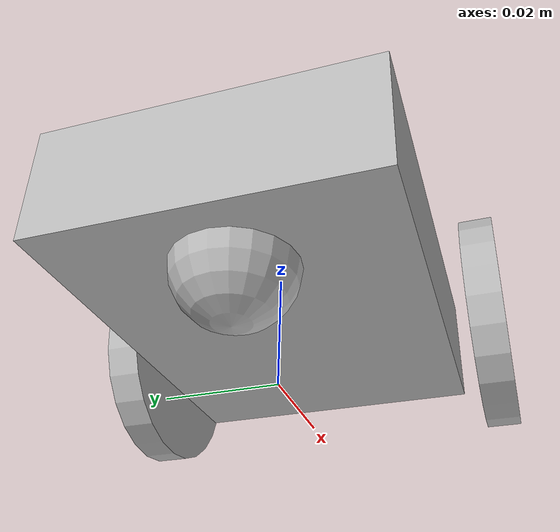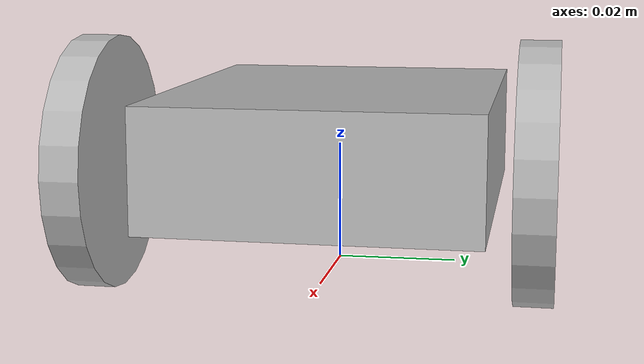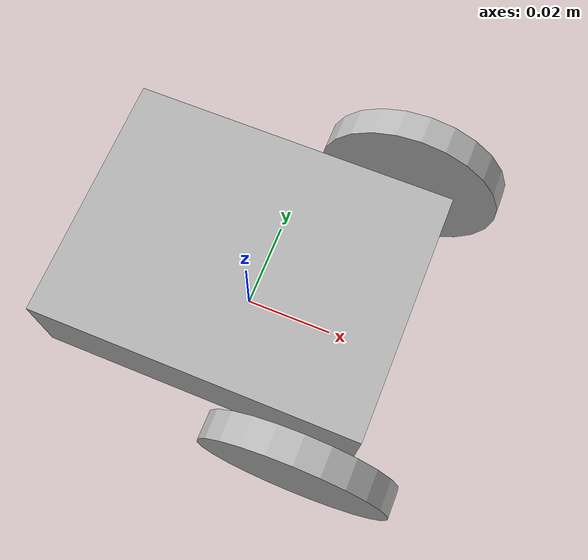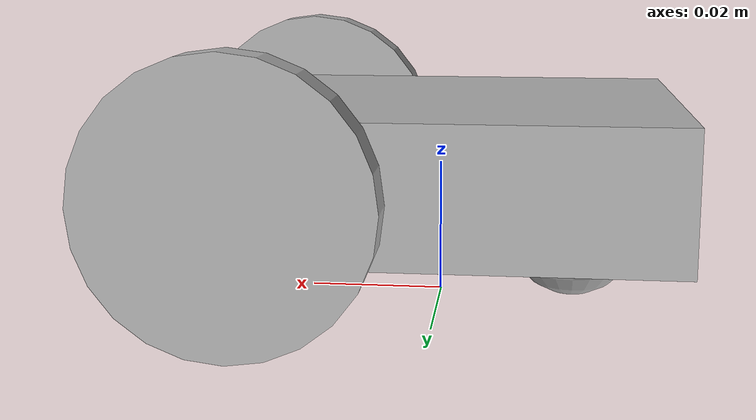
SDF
<?xml version="1.0"?>
<sdf version="1.4">
  <model name="remy">
    <static>false</static>
    <plugin name="microbrain" filename="libmicromouse_plugin.so"/>
    <link name="chassis">
      <pose>0 0 .02 0 0 0</pose>
  <inertial>
    <mass>2</mass>
    <inertia>
      <ixx>0</ixx>
      <ixy>1</ixy>
      <ixz>1</ixz>
      <iyy>0</iyy>
      <iyz>0</iyz>
      <izz>0</izz>
    </inertia>
  </inertial>
      <collision name="collision">
        <geometry>
          <box>
            <size>0.07 0.054 .02</size>
          </box>
        </geometry>
      </collision>
      <visual name="visual">
        <geometry>
          <box>
            <size>0.07 0.054 .02</size>
          </box>
        </geometry>
      </visual>
      <collision name="caster_collision">
        <pose>-0.02 0 -0.01 0 0 0</pose>
        <geometry>
          <sphere>
            <radius>.01</radius>
          </sphere>
        </geometry>
        <surface>
          <friction>
            <ode>
              <mu>0</mu>
              <mu2>0</mu2>
              <slip1>1.0</slip1>
              <slip2>1.0</slip2>
            </ode>
          </friction>
        </surface>
      </collision>
      <visual name="caster_visual">
        <pose>-0.02 0 -0.01 0 0 0</pose>
        <geometry>
          <sphere>
            <radius>.01</radius>
          </sphere>
        </geometry>
      </visual>
    </link>
    <link name="sensor">
      <sensor type="ray" name="front">
        <pose>0 0 .06 0 0 0</pose>
        <visualize>true</visualize>
        <update_rate>30</update_rate>
        <always_on>1</always_on>
        <ray>
          <scan>
            <horizontal>
              <samples>30</samples>
              <resolution>1</resolution>
              <min_angle>0.05</min_angle>
              <max_angle>-.05</max_angle>
            </horizontal>
          </scan>
          <range>
            <min>0.02</min>
            <max>0.15</max>
            <resolution>0.001</resolution>
          </range>
          <noise>
            <type>gaussian</type>
            <mean>0.0</mean>
            <stddev>0.001</stddev>
          </noise>
        </ray>
        <plugin name="front_sensor" filename="libgazebo_ros_laser.so">
          <alwaysOn>true</alwaysOn>
          <robotNamespace>remy</robotNamespace>
          <topicName>/sensor/front</topicName>
          <frameName>front</frameName>
        </plugin>
      </sensor>
    </link>
    <link name="left_wheel">
      <pose>0.025 0.034 0.02 0 1.5707 1.5707</pose>
      <collision name="collision">
        <geometry>
          <cylinder>
            <radius>.02</radius>
            <length>.006</length>
          </cylinder>
        </geometry>
      </collision>
      <visual name="visual">
        <geometry>
          <cylinder>
            <radius>.02</radius>
            <length>.006</length>
          </cylinder>
        </geometry>
      </visual>
    </link>
    <link name="right_wheel">
      <pose>0.025 -0.034 0.02 0 1.5707 1.5707</pose>
      <collision name="collision">
        <geometry>
          <cylinder>
            <radius>.02</radius>
            <length>.006</length>
          </cylinder>
        </geometry>
      </collision>
      <visual name="visual">
        <geometry>
          <cylinder>
            <radius>.02</radius>
            <length>.006</length>
          </cylinder>
        </geometry>
      </visual>
    </link>
    <joint type="revolute" name="left_wheel_hinge">
      <pose>0 0 -0.03 0 0 0</pose>
      <child>left_wheel</child>
      <parent>chassis</parent>
      <axis>
        <xyz>0 1 0</xyz>
      </axis>
    </joint>
    <joint type="revolute" name="right_wheel_hinge">
      <pose>0 0 0.03 0 0 0</pose>
      <child>right_wheel</child>
      <parent>chassis</parent>
      <axis>
        <xyz>0 1 0</xyz>
      </axis>
    </joint>
    <plugin name="differential_drive_controller" filename="libgazebo_ros_diff_drive.so">
      <updateRate>1</updateRate>
      <leftJoint>left_wheel_hinge</leftJoint>
      <rightJoint>right_wheel_hinge</rightJoint>
      <wheelSeparation>0.06</wheelSeparation>
      <wheelDiameter>0.04</wheelDiameter>
      <wheelTorque>.5</wheelTorque>
      <commandTopic>cmd_vel</commandTopic>
      <odometryTopic>odom</odometryTopic>
      <odometryFrame>odom</odometryFrame>
      <robotBaseFrame>remy</robotBaseFrame>
      <legacyMode>false</legacyMode>
    </plugin>
  </model>
</sdf>
